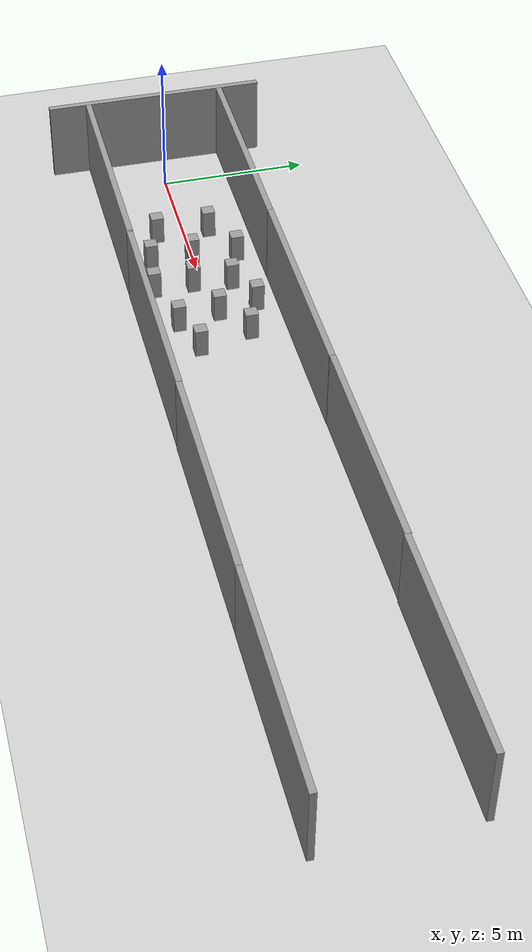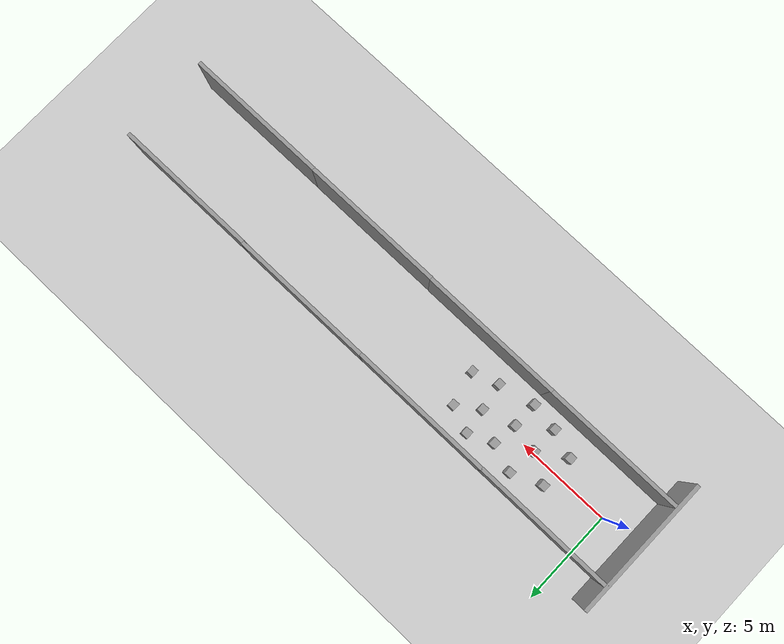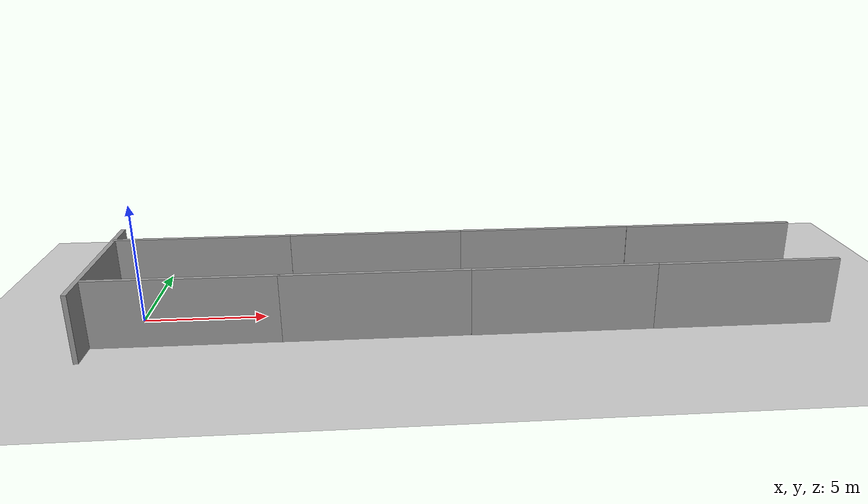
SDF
<sdf version="1.6">
 <world name="default">
  <light name="sun" type="directional">
   <pose>0 0 10 0 -0 0</pose>
   <diffuse>0.8 0.8 0.8 1</diffuse>
   <specular>0.2 0.2 0.2 1</specular>
   <attenuation>
    <range>1000</range>
    <constant>0.9</constant>
    <linear>0.01</linear>
    <quadratic>0.001</quadratic>
   </attenuation>
   <direction>-0.5 0.1 -0.9</direction>
  </light>
  <model name="ground_plane">
   <static>1</static>
   <link name="link">
    <collision name="collision">
     <geometry><plane><normal>0 0 1</normal><size>100 100</size></plane></geometry>
     <surface><friction><ode><mu>100</mu><mu2>50</mu2></ode></friction></surface>
    </collision>
    <visual name="visual">
     <cast_shadows>0</cast_shadows>
     <geometry><plane><normal>0 0 1</normal><size>100 100</size></plane></geometry>
     <material>
      <script><uri>file://media/materials/scripts/gazebo.material</uri><name>Gazebo/Grey</name></script>
     </material>
    </visual>
    <velocity_decay><linear>0</linear><angular>0</angular></velocity_decay>
   </link>
  </model>
  <physics name="default_physics" default="0" type="ode">
   <max_step_size>0.001</max_step_size>
   <real_time_factor>1</real_time_factor>
   <real_time_update_rate>1000</real_time_update_rate>
  </physics>
  <scene><ambient>0.4 0.4 0.4 1</ambient><background>0.7 0.7 0.7 1</background><shadows>0</shadows></scene>
  <spherical_coordinates>
   <surface_model>EARTH_WGS84</surface_model>
   <latitude_deg>0</latitude_deg>
   <longitude_deg>0</longitude_deg>
   <elevation>0</elevation>
   <heading_deg>0</heading_deg>
  </spherical_coordinates>
  <model name="grey_wall">
   <static>1</static>
   <link name="link">
    <pose>0 0 1.4 0 -0 0</pose>
    <collision name="collision"><geometry><box><size>7.5 0.2 2.8</size></box></geometry></collision>
    <visual name="visual">
     <cast_shadows>0</cast_shadows>
     <geometry><box><size>7.5 0.2 2.8</size></box></geometry>
     <material>
      <script>
       <uri>model://grey_wall/materials/scripts</uri>
       <uri>model://grey_wall/materials/textures</uri>
       <name>vrc/grey_wall</name>
      </script>
     </material>
    </visual>
    <velocity_decay><linear>0</linear><angular>0</angular></velocity_decay>
   </link>
   <pose>17.1363 2.32079 0 0 -0 0</pose>
  </model>
  <model name="grey_wall_0">
   <static>1</static>
   <link name="link">
    <pose>0 0 1.4 0 -0 0</pose>
    <collision name="collision"><geometry><box><size>7.5 0.2 2.8</size></box></geometry></collision>
    <visual name="visual">
     <cast_shadows>0</cast_shadows>
     <geometry><box><size>7.5 0.2 2.8</size></box></geometry>
     <material>
      <script>
       <uri>model://grey_wall/materials/scripts</uri>
       <uri>model://grey_wall/materials/textures</uri>
       <name>vrc/grey_wall</name>
      </script>
     </material>
    </visual>
    <velocity_decay><linear>0</linear><angular>0</angular></velocity_decay>
   </link>
   <pose>17.1915 -2.41286 0 0 -0 0</pose>
  </model>
  <model name="grey_wall_1">
   <static>1</static>
   <link name="link">
    <pose>0 0 1.4 0 -0 0</pose>
    <collision name="collision"><geometry><box><size>7.5 0.2 2.8</size></box></geometry></collision>
    <visual name="visual">
     <cast_shadows>0</cast_shadows>
     <geometry><box><size>7.5 0.2 2.8</size></box></geometry>
     <material>
      <script>
       <uri>model://grey_wall/materials/scripts</uri>
       <uri>model://grey_wall/materials/textures</uri>
       <name>vrc/grey_wall</name>
      </script>
     </material>
    </visual>
    <velocity_decay><linear>0</linear><angular>0</angular></velocity_decay>
   </link>
   <pose>-1.54458 -0.02055 0 0 0 -1.57546</pose>
  </model>
  <gravity>0 0 -9.8</gravity>
  <magnetic_field>6e-06 2.3e-05 -4.2e-05</magnetic_field>
  <atmosphere type="adiabatic"/>
  <model name="grey_wall_clone">
   <static>1</static>
   <link name="link">
    <pose>0 0 1.4 0 -0 0</pose>
    <collision name="collision"><geometry><box><size>7.5 0.2 2.8</size></box></geometry></collision>
    <visual name="visual">
     <cast_shadows>0</cast_shadows>
     <geometry><box><size>7.5 0.2 2.8</size></box></geometry>
     <material>
      <script>
       <uri>model://grey_wall/materials/scripts</uri>
       <uri>model://grey_wall/materials/textures</uri>
       <name>vrc/grey_wall</name>
      </script>
     </material>
    </visual>
    <velocity_decay><linear>0</linear><angular>0</angular></velocity_decay>
   </link>
   <pose>2.20001 2.30624 0 0 -0 0</pose>
  </model>
  <model name="grey_wall_clone_0">
   <static>1</static>
   <link name="link">
    <pose>0 0 1.4 0 -0 0</pose>
    <collision name="collision"><geometry><box><size>7.5 0.2 2.8</size></box></geometry></collision>
    <visual name="visual">
     <cast_shadows>0</cast_shadows>
     <geometry><box><size>7.5 0.2 2.8</size></box></geometry>
     <material>
      <script>
       <uri>model://grey_wall/materials/scripts</uri>
       <uri>model://grey_wall/materials/textures</uri>
       <name>vrc/grey_wall</name>
      </script>
     </material>
    </visual>
    <velocity_decay><linear>0</linear><angular>0</angular></velocity_decay>
   </link>
   <pose>2.29028 -2.39115 0 0 -0 0</pose>
  </model>
  <model name="grey_wall_clone_1">
   <static>1</static>
   <link name="link">
    <pose>0 0 1.4 0 -0 0</pose>
    <collision name="collision"><geometry><box><size>7.5 0.2 2.8</size></box></geometry></collision>
    <visual name="visual">
     <cast_shadows>0</cast_shadows>
     <geometry><box><size>7.5 0.2 2.8</size></box></geometry>
     <material>
      <script>
       <uri>model://grey_wall/materials/scripts</uri>
       <uri>model://grey_wall/materials/textures</uri>
       <name>vrc/grey_wall</name>
      </script>
     </material>
    </visual>
    <velocity_decay><linear>0</linear><angular>0</angular></velocity_decay>
   </link>
   <pose>9.70026 -2.39785 0 0 -0 0</pose>
  </model>
  <model name="grey_wall_clone_2">
   <static>1</static>
   <link name="link">
    <pose>0 0 1.4 0 -0 0</pose>
    <collision name="collision"><geometry><box><size>7.5 0.2 2.8</size></box></geometry></collision>
    <visual name="visual">
     <cast_shadows>0</cast_shadows>
     <geometry><box><size>7.5 0.2 2.8</size></box></geometry>
     <material>
      <script>
       <uri>model://grey_wall/materials/scripts</uri>
       <uri>model://grey_wall/materials/textures</uri>
       <name>vrc/grey_wall</name>
      </script>
     </material>
    </visual>
    <velocity_decay><linear>0</linear><angular>0</angular></velocity_decay>
   </link>
   <pose>9.64116 2.31243 0 0 -0 0</pose>
  </model>
  <model name="grey_wall_clone_3">
   <static>1</static>
   <link name="link">
    <pose>0 0 1.4 0 -0 0</pose>
    <collision name="collision"><geometry><box><size>7.5 0.2 2.8</size></box></geometry></collision>
    <visual name="visual">
     <cast_shadows>0</cast_shadows>
     <geometry><box><size>7.5 0.2 2.8</size></box></geometry>
     <material>
      <script>
       <uri>model://grey_wall/materials/scripts</uri>
       <uri>model://grey_wall/materials/textures</uri>
       <name>vrc/grey_wall</name>
      </script>
     </material>
    </visual>
    <velocity_decay><linear>0</linear><angular>0</angular></velocity_decay>
   </link>
   <pose>24.6232 2.29556 0 0 -0 0</pose>
  </model>
  <model name="grey_wall_clone_4">
   <static>1</static>
   <link name="link">
    <pose>0 0 1.4 0 -0 0</pose>
    <collision name="collision"><geometry><box><size>7.5 0.2 2.8</size></box></geometry></collision>
    <visual name="visual">
     <cast_shadows>0</cast_shadows>
     <geometry><box><size>7.5 0.2 2.8</size></box></geometry>
     <material>
      <script>
       <uri>model://grey_wall/materials/scripts</uri>
       <uri>model://grey_wall/materials/textures</uri>
       <name>vrc/grey_wall</name>
      </script>
     </material>
    </visual>
    <velocity_decay><linear>0</linear><angular>0</angular></velocity_decay>
   </link>
   <pose>24.6737 -2.41875 0 0 -0 0</pose>
  </model>
  <model name="unit_box_0">
   <pose>3.08731 -0.956836 0.499999 -4e-06 -2e-06 -0.000482</pose>
   <link name="link">
    <inertial>
     <mass>1</mass>
     <inertia>
      <ixx>0.166667</ixx>
      <ixy>0</ixy>
      <ixz>0</ixz>
      <iyy>0.166667</iyy>
      <iyz>0</iyz>
      <izz>0.166667</izz>
     </inertia>
    </inertial>
    <collision name="collision"><geometry><box><size>0.392878 0.422643 1</size></box></geometry></collision>
    <visual name="visual">
     <geometry><box><size>0.392878 0.422643 1</size></box></geometry>
     <material>
      <script><name>Gazebo/Grey</name><uri>file://media/materials/scripts/gazebo.material</uri></script>
     </material>
    </visual>
   </link>
  </model>
  <model name="unit_box_0_clone">
   <pose>3.15563 0.832522 0.500001 -2e-06 1e-06 -0.000341</pose>
   <link name="link">
    <inertial>
     <mass>1</mass>
     <inertia>
      <ixx>0.166667</ixx>
      <ixy>0</ixy>
      <ixz>0</ixz>
      <iyy>0.166667</iyy>
      <iyz>0</iyz>
      <izz>0.166667</izz>
     </inertia>
    </inertial>
    <collision name="collision"><geometry><box><size>0.392878 0.422643 1</size></box></geometry></collision>
    <visual name="visual">
     <geometry><box><size>0.392878 0.422643 1</size></box></geometry>
     <material>
      <script><name>Gazebo/Grey</name><uri>file://media/materials/scripts/gazebo.material</uri></script>
     </material>
    </visual>
   </link>
  </model>
  <model name="unit_box_0_clone_0">
   <pose>4.51285 -1.45184 0.500001 2e-06 1e-06 -0.00045</pose>
   <link name="link">
    <inertial>
     <mass>1</mass>
     <inertia>
      <ixx>0.166667</ixx>
      <ixy>0</ixy>
      <ixz>0</ixz>
      <iyy>0.166667</iyy>
      <iyz>0</iyz>
      <izz>0.166667</izz>
     </inertia>
    </inertial>
    <collision name="collision"><geometry><box><size>0.392878 0.422643 1</size></box></geometry></collision>
    <visual name="visual">
     <geometry><box><size>0.392878 0.422643 1</size></box></geometry>
     <material>
      <script><name>Gazebo/Grey</name><uri>file://media/materials/scripts/gazebo.material</uri></script>
     </material>
    </visual>
   </link>
  </model>
  <model name="unit_box_0_clone_1">
   <pose>4.52747 -0.034212 0.499999 -2e-06 -4e-06 -0.000708</pose>
   <link name="link">
    <inertial>
     <mass>1</mass>
     <inertia>
      <ixx>0.166667</ixx>
      <ixy>0</ixy>
      <ixz>0</ixz>
      <iyy>0.166667</iyy>
      <iyz>0</iyz>
      <izz>0.166667</izz>
     </inertia>
    </inertial>
    <collision name="collision"><geometry><box><size>0.392878 0.422643 1</size></box></geometry></collision>
    <visual name="visual">
     <geometry><box><size>0.392878 0.422643 1</size></box></geometry>
     <material>
      <script><name>Gazebo/Grey</name><uri>file://media/materials/scripts/gazebo.material</uri></script>
     </material>
    </visual>
   </link>
  </model>
  <model name="unit_box_0_clone_2">
   <pose>5.98056 -0.324748 0.499999 -3e-06 4e-06 -0.000451</pose>
   <link name="link">
    <inertial>
     <mass>1</mass>
     <inertia>
      <ixx>0.166667</ixx>
      <ixy>0</ixy>
      <ixz>0</ixz>
      <iyy>0.166667</iyy>
      <iyz>0</iyz>
      <izz>0.166667</izz>
     </inertia>
    </inertial>
    <collision name="collision"><geometry><box><size>0.392878 0.422643 1</size></box></geometry></collision>
    <visual name="visual">
     <geometry><box><size>0.392878 0.422643 1</size></box></geometry>
     <material>
      <script><name>Gazebo/Grey</name><uri>file://media/materials/scripts/gazebo.material</uri></script>
     </material>
    </visual>
   </link>
  </model>
  <model name="unit_box_0_clone_3">
   <pose>5.98798 -1.66032 0.500001 0 -3e-06 -0.000527</pose>
   <link name="link">
    <inertial>
     <mass>1</mass>
     <inertia>
      <ixx>0.166667</ixx>
      <ixy>0</ixy>
      <ixz>0</ixz>
      <iyy>0.166667</iyy>
      <iyz>0</iyz>
      <izz>0.166667</izz>
     </inertia>
    </inertial>
    <collision name="collision"><geometry><box><size>0.392878 0.422643 1</size></box></geometry></collision>
    <visual name="visual">
     <geometry><box><size>0.392878 0.422643 1</size></box></geometry>
     <material>
      <script><name>Gazebo/Grey</name><uri>file://media/materials/scripts/gazebo.material</uri></script>
     </material>
    </visual>
   </link>
  </model>
  <model name="unit_box_0_clone_4">
   <pose>4.69976 1.46748 0.499999 4e-06 3e-06 -0.000628</pose>
   <link name="link">
    <inertial>
     <mass>1</mass>
     <inertia>
      <ixx>0.166667</ixx>
      <ixy>0</ixy>
      <ixz>0</ixz>
      <iyy>0.166667</iyy>
      <iyz>0</iyz>
      <izz>0.166667</izz>
     </inertia>
    </inertial>
    <collision name="collision"><geometry><box><size>0.392878 0.422643 1</size></box></geometry></collision>
    <visual name="visual">
     <geometry><box><size>0.392878 0.422643 1</size></box></geometry>
     <material>
      <script><name>Gazebo/Grey</name><uri>file://media/materials/scripts/gazebo.material</uri></script>
     </material>
    </visual>
   </link>
  </model>
  <model name="unit_box_0_clone_5">
   <pose>6.13954 0.962547 0.500001 -3e-06 -0 -0.000551</pose>
   <link name="link">
    <inertial>
     <mass>1</mass>
     <inertia>
      <ixx>0.166667</ixx>
      <ixy>0</ixy>
      <ixz>0</ixz>
      <iyy>0.166667</iyy>
      <iyz>0</iyz>
      <izz>0.166667</izz>
     </inertia>
    </inertial>
    <collision name="collision"><geometry><box><size>0.392878 0.422643 1</size></box></geometry></collision>
    <visual name="visual">
     <geometry><box><size>0.392878 0.422643 1</size></box></geometry>
     <material>
      <script><name>Gazebo/Grey</name><uri>file://media/materials/scripts/gazebo.material</uri></script>
     </material>
    </visual>
   </link>
  </model>
  <model name="unit_box_0_clone_5_clone">
   <pose>8.76483 0.972361 0.500001 -1e-06 -2e-06 -0.000524</pose>
   <link name="link">
    <inertial>
     <mass>1</mass>
     <inertia>
      <ixx>0.166667</ixx>
      <ixy>0</ixy>
      <ixz>0</ixz>
      <iyy>0.166667</iyy>
      <iyz>0</iyz>
      <izz>0.166667</izz>
     </inertia>
    </inertial>
    <collision name="collision"><geometry><box><size>0.392878 0.422643 1</size></box></geometry></collision>
    <visual name="visual">
     <geometry><box><size>0.392878 0.422643 1</size></box></geometry>
     <material>
      <script><name>Gazebo/Grey</name><uri>file://media/materials/scripts/gazebo.material</uri></script>
     </material>
    </visual>
   </link>
  </model>
  <model name="unit_box_0_clone_5_clone_0">
   <pose>7.41069 1.50068 0.499999 5e-06 2e-06 -0.000604</pose>
   <link name="link">
    <inertial>
     <mass>1</mass>
     <inertia>
      <ixx>0.166667</ixx>
      <ixy>0</ixy>
      <ixz>0</ixz>
      <iyy>0.166667</iyy>
      <iyz>0</iyz>
      <izz>0.166667</izz>
     </inertia>
    </inertial>
    <collision name="collision"><geometry><box><size>0.392878 0.422643 1</size></box></geometry></collision>
    <visual name="visual">
     <geometry><box><size>0.392878 0.422643 1</size></box></geometry>
     <material>
      <script><name>Gazebo/Grey</name><uri>file://media/materials/scripts/gazebo.material</uri></script>
     </material>
    </visual>
   </link>
  </model>
  <model name="unit_box_0_clone_5_clone_1">
   <pose>7.61255 0.180149 0.499999 3e-06 4e-06 -0.000686</pose>
   <link name="link">
    <inertial>
     <mass>1</mass>
     <inertia>
      <ixx>0.166667</ixx>
      <ixy>0</ixy>
      <ixz>0</ixz>
      <iyy>0.166667</iyy>
      <iyz>0</iyz>
      <izz>0.166667</izz>
     </inertia>
    </inertial>
    <collision name="collision"><geometry><box><size>0.392878 0.422643 1</size></box></geometry></collision>
    <visual name="visual">
     <geometry><box><size>0.392878 0.422643 1</size></box></geometry>
     <material>
      <script><name>Gazebo/Grey</name><uri>file://media/materials/scripts/gazebo.material</uri></script>
     </material>
    </visual>
   </link>
  </model>
  <model name="unit_box_0_clone_5_clone_2">
   <pose>9.18695 -0.799584 0.500001 2e-06 1e-06 -0.000634</pose>
   <link name="link">
    <inertial>
     <mass>1</mass>
     <inertia>
      <ixx>0.166667</ixx>
      <ixy>0</ixy>
      <ixz>0</ixz>
      <iyy>0.166667</iyy>
      <iyz>0</iyz>
      <izz>0.166667</izz>
     </inertia>
    </inertial>
    <collision name="collision"><geometry><box><size>0.392878 0.422643 1</size></box></geometry></collision>
    <visual name="visual">
     <geometry><box><size>0.392878 0.422643 1</size></box></geometry>
     <material>
      <script><name>Gazebo/Grey</name><uri>file://media/materials/scripts/gazebo.material</uri></script>
     </material>
    </visual>
   </link>
  </model>
  <model name="unit_box_0_clone_5_clone_3">
   <pose>7.84763 -1.22713 0.499999 5e-06 2e-06 -0.000589</pose>
   <link name="link">
    <inertial>
     <mass>1</mass>
     <inertia>
      <ixx>0.166667</ixx>
      <ixy>0</ixy>
      <ixz>0</ixz>
      <iyy>0.166667</iyy>
      <iyz>0</iyz>
      <izz>0.166667</izz>
     </inertia>
    </inertial>
    <collision name="collision"><geometry><box><size>0.392878 0.422643 1</size></box></geometry></collision>
    <visual name="visual">
     <geometry><box><size>0.392878 0.422643 1</size></box></geometry>
     <material>
      <script><name>Gazebo/Grey</name><uri>file://media/materials/scripts/gazebo.material</uri></script>
     </material>
    </visual>
   </link>
  </model>
 </world>
</sdf>
